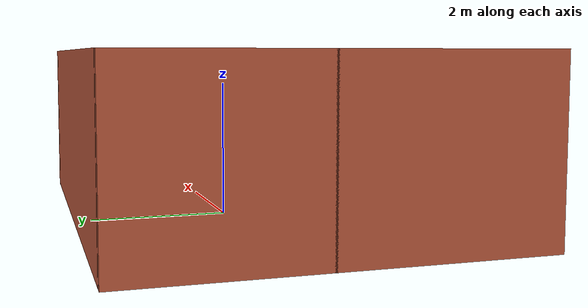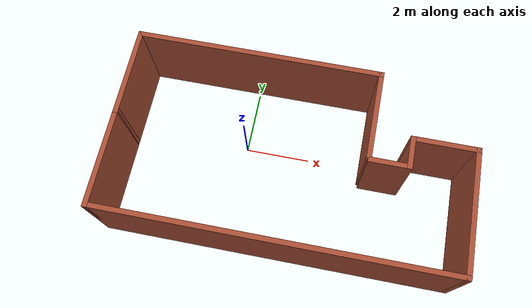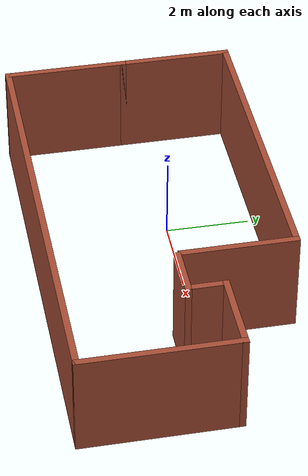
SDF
<?xml version='1.0'?>
<sdf version='1.6'>
  <model name='model'>
    <pose frame=''>1.535 -0.545 0 0 -0 0</pose>
    <link name='Wall_0'>
      <collision name='Wall_0_Collision'>
        <geometry>
          <box>
            <size>3 0.15 2.5</size>
          </box>
        </geometry>
        <pose frame=''>0 0 1.25 0 -0 0</pose>
      </collision>
      <visual name='Wall_0_Visual'>
        <pose frame=''>0 0 1.25 0 -0 0</pose>
        <geometry>
          <box>
            <size>3 0.15 2.5</size>
          </box>
        </geometry>
        <material>
          <script>
            <uri>file://media/materials/scripts/gazebo.material</uri>
            <name>Gazebo/Bricks</name>
          </script>
          <ambient>1 1 1 1</ambient>
        </material>
        <meta>
          <layer>0</layer>
        </meta>
      </visual>
      <pose frame=''>-5.175 -1.3 0 0 0 -1.5708</pose>
    </link>
    <link name='Wall_1'>
      <collision name='Wall_1_Collision'>
        <geometry>
          <box>
            <size>10.5 0.15 2.5</size>
          </box>
        </geometry>
        <pose frame=''>0 0 1.25 0 -0 0</pose>
      </collision>
      <visual name='Wall_1_Visual'>
        <pose frame=''>0 0 1.25 0 -0 0</pose>
        <geometry>
          <box>
            <size>10.5 0.15 2.5</size>
          </box>
        </geometry>
        <material>
          <script>
            <uri>file://media/materials/scripts/gazebo.material</uri>
            <name>Gazebo/Bricks</name>
          </script>
          <ambient>1 1 1 1</ambient>
        </material>
        <meta>
          <layer>0</layer>
        </meta>
      </visual>
      <pose frame=''>0 -2.725 0 0 -0 0</pose>
    </link>
    <link name='Wall_14'>
      <collision name='Wall_14_Collision'>
        <geometry>
          <box>
            <size>2.75 0.15 2.5</size>
          </box>
        </geometry>
        <pose frame=''>0 0 1.25 0 -0 0</pose>
      </collision>
      <visual name='Wall_14_Visual'>
        <pose frame=''>0 0 1.25 0 -0 0</pose>
        <geometry>
          <box>
            <size>2.75 0.15 2.5</size>
          </box>
        </geometry>
        <material>
          <script>
            <uri>file://media/materials/scripts/gazebo.material</uri>
            <name>Gazebo/Bricks</name>
          </script>
          <ambient>1 1 1 1</ambient>
        </material>
        <meta>
          <layer>0</layer>
        </meta>
      </visual>
      <pose frame=''>-5.175 1.425 0 0 -0 1.5708</pose>
    </link>
    <link name='Wall_15'>
      <collision name='Wall_15_Collision'>
        <geometry>
          <box>
            <size>7.5 0.15 2.5</size>
          </box>
        </geometry>
        <pose frame=''>0 0 1.25 0 -0 0</pose>
      </collision>
      <visual name='Wall_15_Visual'>
        <pose frame=''>0 0 1.25 0 -0 0</pose>
        <geometry>
          <box>
            <size>7.5 0.15 2.5</size>
          </box>
        </geometry>
        <material>
          <script>
            <uri>file://media/materials/scripts/gazebo.material</uri>
            <name>Gazebo/Bricks</name>
          </script>
          <ambient>1 1 1 1</ambient>
        </material>
        <meta>
          <layer>0</layer>
        </meta>
      </visual>
      <pose frame=''>-1.5 2.725 0 0 -0 0</pose>
    </link>
    <link name='Wall_16'>
      <collision name='Wall_16_Collision'>
        <geometry>
          <box>
            <size>2.75 0.15 2.5</size>
          </box>
        </geometry>
        <pose frame=''>0 0 1.25 0 -0 0</pose>
      </collision>
      <visual name='Wall_16_Visual'>
        <pose frame=''>0 0 1.25 0 -0 0</pose>
        <geometry>
          <box>
            <size>2.75 0.15 2.5</size>
          </box>
        </geometry>
        <material>
          <script>
            <uri>file://media/materials/scripts/gazebo.material</uri>
            <name>Gazebo/Bricks</name>
          </script>
          <ambient>1 1 1 1</ambient>
        </material>
        <meta>
          <layer>0</layer>
        </meta>
      </visual>
      <pose frame=''>2.175 1.425 0 0 0 -1.5708</pose>
    </link>
    <link name='Wall_2'>
      <collision name='Wall_2_Collision'>
        <geometry>
          <box>
            <size>3.75 0.15 2.5</size>
          </box>
        </geometry>
        <pose frame=''>0 0 1.25 0 -0 0</pose>
      </collision>
      <visual name='Wall_2_Visual'>
        <pose frame=''>0 0 1.25 0 -0 0</pose>
        <geometry>
          <box>
            <size>3.75 0.15 2.5</size>
          </box>
        </geometry>
        <material>
          <script>
            <uri>file://media/materials/scripts/gazebo.material</uri>
            <name>Gazebo/Bricks</name>
          </script>
          <ambient>1 1 1 1</ambient>
        </material>
        <meta>
          <layer>0</layer>
        </meta>
      </visual>
      <pose frame=''>5.175 -0.925 0 0 -0 1.5708</pose>
    </link>
    <link name='Wall_3'>
      <collision name='Wall_3_Collision'>
        <geometry>
          <box>
            <size>2 0.15 2.5</size>
          </box>
        </geometry>
        <pose frame=''>0 0 1.25 0 -0 0</pose>
      </collision>
      <visual name='Wall_3_Visual'>
        <pose frame=''>0 0 1.25 0 -0 0</pose>
        <geometry>
          <box>
            <size>2 0.15 2.5</size>
          </box>
        </geometry>
        <material>
          <script>
            <uri>file://media/materials/scripts/gazebo.material</uri>
            <name>Gazebo/Bricks</name>
          </script>
          <ambient>1 1 1 1</ambient>
        </material>
        <meta>
          <layer>0</layer>
        </meta>
      </visual>
      <pose frame=''>4.25 0.875 0 0 -0 3.14159</pose>
    </link>
    <link name='Wall_4'>
      <collision name='Wall_4_Collision'>
        <geometry>
          <box>
            <size>1 0.15 2.5</size>
          </box>
        </geometry>
        <pose frame=''>0 0 1.25 0 -0 0</pose>
      </collision>
      <visual name='Wall_4_Visual'>
        <pose frame=''>0 0 1.25 0 -0 0</pose>
        <geometry>
          <box>
            <size>1 0.15 2.5</size>
          </box>
        </geometry>
        <material>
          <script>
            <uri>file://media/materials/scripts/gazebo.material</uri>
            <name>Gazebo/Bricks</name>
          </script>
          <ambient>1 1 1 1</ambient>
        </material>
        <meta>
          <layer>0</layer>
        </meta>
      </visual>
      <pose frame=''>3.325 0.45 0 0 0 -1.5708</pose>
    </link>
    <link name='Wall_5'>
      <collision name='Wall_5_Collision'>
        <geometry>
          <box>
            <size>1.25 0.15 2.5</size>
          </box>
        </geometry>
        <pose frame=''>0 0 1.25 0 -0 0</pose>
      </collision>
      <visual name='Wall_5_Visual'>
        <pose frame=''>0 0 1.25 0 -0 0</pose>
        <geometry>
          <box>
            <size>1.25 0.15 2.5</size>
          </box>
        </geometry>
        <material>
          <script>
            <uri>file://media/materials/scripts/gazebo.material</uri>
            <name>Gazebo/Bricks</name>
          </script>
          <ambient>1 1 1 1</ambient>
        </material>
        <meta>
          <layer>0</layer>
        </meta>
      </visual>
      <pose frame=''>2.775 0.025 0 0 -0 3.14159</pose>
    </link>
    <static>1</static>
  </model>
</sdf>
